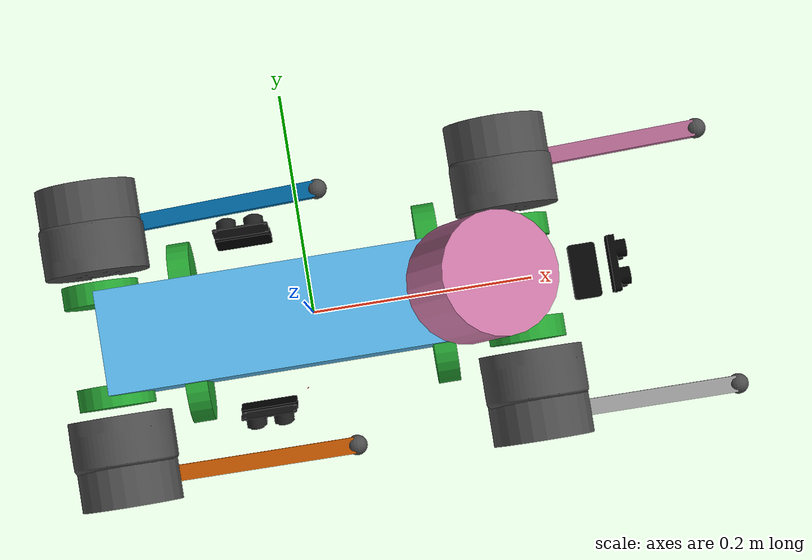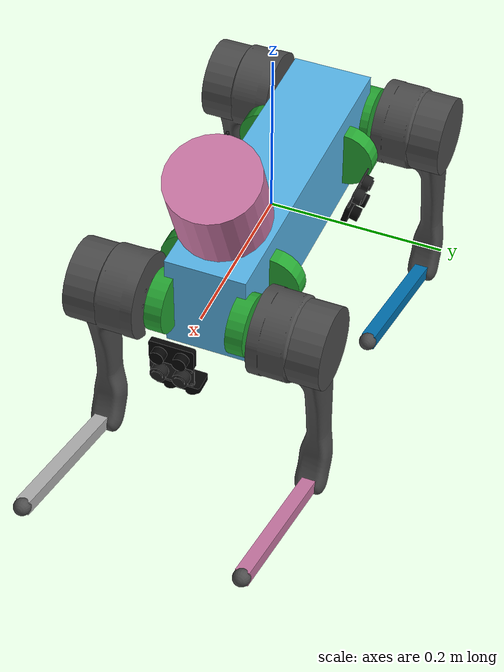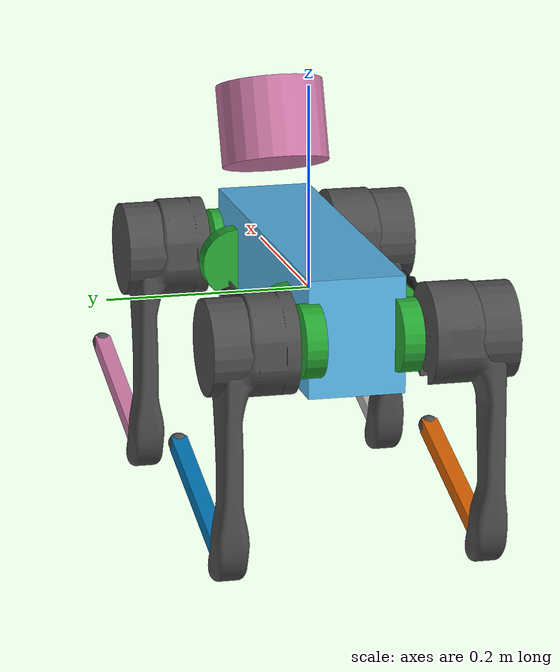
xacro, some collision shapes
<?xml version="1.0"?>

<robot name="go1" xmlns:xacro="http://www.ros.org/wiki/xacro">

    <xacro:arg name="DEBUG" default="false"/>

    <xacro:include filename="$(find go1_description)/xacro/const.xacro"/>
    <xacro:include filename="$(find go1_description)/xacro/materials.xacro"/>
    <xacro:include filename="$(find go1_description)/xacro/leg.xacro"/>
    <xacro:include filename="$(find go1_description)/xacro/gazebo.xacro"/>
    <xacro:include filename="$(find go1_description)/xacro/depthCamera.xacro"/>
    <xacro:include filename="$(find go1_description)/xacro/ultraSound.xacro"/>
    <xacro:include filename="$(find go1_description)/xacro/lidar.xacro"/>

    <xacro:arg name="gpu" default="true"/>
    <xacro:property name="gpu" value="$(arg gpu)" />

    <!-- Rotor related joint and link is only for demonstrate location. -->
    <!-- Actually, the rotor will rotate and the joint is not fixed. Reduction ratio should be considered. -->

    <!-- Debug mode will hung up the robot, use "true" or "false" to switch it. -->
    <xacro:if value="$(arg DEBUG)">
        <link name="world"/>
        <joint name="base_static_joint" type="fixed">
            <origin rpy="0 0 0" xyz="0 0 0"/>
            <parent link="world"/>
            <child link="base"/>
        </joint>
    </xacro:if>

    <link name="base">
        <visual>
            <origin rpy="0 0 0" xyz="0 0 0"/>
            <geometry>
                <box size="0.001 0.001 0.001"/>
            </geometry>
        </visual>
    </link>

    <joint name="floating_base" type="fixed">
        <origin rpy="0 0 0" xyz="0 0 0"/>
        <parent link="base"/>
        <child link="trunk"/>
    </joint>

    <link name="trunk">
        <visual>
            <origin rpy="0 0 0" xyz="0 0 0"/>
            <geometry>
                <mesh filename="package://go1_description/meshes/trunk.dae" scale="1 1 1"/>
            </geometry>
        </visual>
        <collision>
            <origin rpy="0 0 0" xyz="0 0 0"/>
            <geometry>
                <box size="${trunk_length} ${trunk_width} ${trunk_height}"/>
            </geometry>
        </collision>
        <inertial>
            <origin rpy="0 0 0" xyz="${trunk_com_x} ${trunk_com_y} ${trunk_com_z}"/>
            <mass value="${trunk_mass}"/>
            <inertia
                ixx="${trunk_ixx}" ixy="${trunk_ixy}" ixz="${trunk_ixz}"
                iyy="${trunk_iyy}" iyz="${trunk_iyz}"
                izz="${trunk_izz}"/>
        </inertial>
    </link>

    <joint name="imu_joint" type="fixed">
        <parent link="trunk"/>
        <child link="imu_link"/>
        <origin rpy="0 0 0" xyz="-0.01592 -0.06659 -0.00617"/>
    </joint>

    <link name="imu_link">
        <inertial>
            <mass value="0.001"/>
            <origin rpy="0 0 0" xyz="0 0 0"/>
            <inertia ixx="0.0001" ixy="0" ixz="0" iyy="0.0001" iyz="0" izz="0.0001"/>
        </inertial>
        <visual>
            <origin rpy="0 0 0" xyz="0 0 0"/>
            <geometry>
                <box size="0.001 0.001 0.001"/>
            </geometry>
        </visual>
        <collision>
            <origin rpy="0 0 0" xyz="0 0 0"/>
            <geometry>
                <box size=".001 .001 .001"/>
            </geometry>
        </collision>
    </link>

    <xacro:leg name="FR" mirror="-1" mirror_dae= "False" front_hind="1"  front_hind_dae="True"  />
    <xacro:leg name="FL" mirror="1"  mirror_dae="True"   front_hind="1"  front_hind_dae="True"  />
    <xacro:leg name="RR" mirror="-1" mirror_dae="False"  front_hind="-1" front_hind_dae="False" />
    <xacro:leg name="RL" mirror="1"  mirror_dae="True"   front_hind="-1" front_hind_dae="False" />

    <xacro:depthCamera camID="1" name="face">
        <origin rpy="0 0 0" xyz="0.2785 -0.0125 0.0167"/>
    </xacro:depthCamera>

    <xacro:depthCamera camID="2" name="chin">
        <origin rpy="0 ${PI/2} 0" xyz="0.2522 -0.0125 -0.0436"/>
    </xacro:depthCamera>

    <xacro:depthCamera camID="3" name="left">
        <origin rpy="0 0.2618 ${PI/2}" xyz="-0.041 0.082 -0.0176"/>
    </xacro:depthCamera>

    <xacro:depthCamera camID="4" name="right">
        <origin rpy="0 0.2618 ${-PI/2}" xyz="-0.066 -0.082 -0.0176"/>
    </xacro:depthCamera>

    <xacro:depthCamera camID="5" name="rearDown">
        <origin rpy="0 ${PI/2} 0" xyz="-0.0825 -0.0125 -0.04365"/>
    </xacro:depthCamera>

    <joint name="camera_laserscan_joint_left" type="fixed">
        <origin rpy="0 0.2618 0" xyz="0 0 0"/>
        <parent link="camera_left"/>
        <child link="camera_laserscan_link_left"/>
    </joint>

    <link name="camera_laserscan_link_left">
    </link>

    <joint name="camera_laserscan_joint_right" type="fixed">
        <origin rpy="0 0.2618 0" xyz="0 0 0"/>
        <parent link="camera_right"/>
        <child link="camera_laserscan_link_right"/>
    </joint>

    <link name="camera_laserscan_link_right">
    </link>

    <xacro:ultraSound name="left">
        <origin rpy="0 0.2618 ${PI/2}" xyz="-0.0535  0.0826 0.00868"/>
    </xacro:ultraSound>

    <xacro:ultraSound name="right">
        <origin rpy="0 0.2618 ${-PI/2}" xyz="-0.0535 -0.0826 0.00868"/>
    </xacro:ultraSound>

    <xacro:ultraSound name="face">
        <origin rpy="0 0 0" xyz="0.2747 0.0 -0.0088"/>
    </xacro:ultraSound>

    <xacro:include filename="$(find go1_description)/xacro/RS-32.urdf.xacro"/>
    <xacro:RS-32 parent="trunk" name="robosense" hz="20" lasers="32" samples="900" gpu="${gpu}" topic="/rslidar_points" collision_range="0.1" min_range="0.1" max_range="30.0" min_angle="-${M_PI}" max_angle="${M_PI}">
        <origin xyz="0.15 0 0.13" rpy="0 0.37 0" />
    </xacro:RS-32>

</robot>

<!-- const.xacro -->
<robot xmlns:xacro="http://www.ros.org/wiki/xacro">

    <!-- Constants for robot dimensions -->
    <xacro:property name="PI" value="3.1415926535897931"/>
    <xacro:property name="stick_mass" value="0.00001"/>

    <!-- simplified collision value -->
    <xacro:property name="trunk_width" value="0.0935"/>
    <xacro:property name="trunk_length" value="0.3762"/>
    <xacro:property name="trunk_height" value="0.114"/>
    <xacro:property name="hip_radius" value="0.046"/>
    <xacro:property name="hip_length" value="0.04"/>
    <xacro:property name="thigh_shoulder_radius" value="0.041"/>
    <xacro:property name="thigh_shoulder_length" value="0.032"/>
    <xacro:property name="thigh_width" value="0.0245"/>
    <xacro:property name="thigh_height" value="0.034"/>
    <xacro:property name="calf_width" value="0.016"/>
    <xacro:property name="calf_height" value="0.016"/>
    <xacro:property name="foot_radius" value="0.02"/>
    <xacro:property name="stick_radius" value="0.01"/>
    <xacro:property name="stick_length" value="0.2"/>

    <!-- kinematic value -->
    <xacro:property name="thigh_offset" value="0.08"/>
    <xacro:property name="thigh_length" value="0.213"/>
    <xacro:property name="calf_length" value="0.213"/>

    <!-- leg offset from trunk center value -->
    <xacro:property name="leg_offset_x" value="0.1881"/>
    <xacro:property name="leg_offset_y" value="0.04675"/>
    <xacro:property name="hip_offset" value="0.08"/>

    <!-- offset of link and rotor locations (left front) -->
    <xacro:property name="hip_offset_x" value="0.1881"/>
    <xacro:property name="hip_offset_y" value="0.04675"/>
    <xacro:property name="hip_offset_z" value="0.0"/>
    <xacro:property name="hip_rotor_offset_x" value="0.11215"/>
    <xacro:property name="hip_rotor_offset_y" value="0.04675"/>
    <xacro:property name="hip_rotor_offset_z" value="0.0"/>

    <xacro:property name="thigh_offset_x" value="0"/>
    <xacro:property name="thigh_offset_y" value="0.08"/>
    <xacro:property name="thigh_offset_z" value="0.0"/>
    <xacro:property name="thigh_rotor_offset_x" value="0.0"/>
    <xacro:property name="thigh_rotor_offset_y" value="-0.00015"/>
    <xacro:property name="thigh_rotor_offset_z" value="0.0"/>

    <xacro:property name="calf_offset_x" value="0.0"/>
    <xacro:property name="calf_offset_y" value="0.0"/>
    <xacro:property name="calf_offset_z" value="-0.213"/>
    <xacro:property name="calf_rotor_offset_x" value="0.0"/>
    <xacro:property name="calf_rotor_offset_y" value="-0.03235"/>
    <xacro:property name="calf_rotor_offset_z" value="0.0"/>

    <!-- joint limits -->
    <xacro:property name="damping" value="0.01"/>
    <xacro:property name="friction" value="0.2"/>
    <xacro:property name="hip_position_max" value="0.863"/>
    <xacro:property name="hip_position_min" value="-0.863"/>
    <xacro:property name="hip_velocity_max" value="30.1"/>
    <xacro:property name="hip_torque_max" value="23.7"/>
    <xacro:property name="thigh_position_max" value="4.501"/>
    <xacro:property name="thigh_position_min" value="-0.686"/>
    <xacro:property name="thigh_velocity_max" value="30.1"/>
    <xacro:property name="thigh_torque_max" value="23.7"/>
    <xacro:property name="calf_position_max" value="-0.888"/>
    <xacro:property name="calf_position_min" value="-2.818"/>
    <xacro:property name="calf_velocity_max" value="20.06"/>
    <xacro:property name="calf_torque_max" value="35.55"/>

    <!-- dynamics inertial value        total 12.84kg -->
    <!-- trunk -->
    <xacro:property name="trunk_mass" value="5.204"/>
    <xacro:property name="trunk_com_x" value="0.0223"/>
    <xacro:property name="trunk_com_y" value="0.002"/>
    <xacro:property name="trunk_com_z" value="-0.0005"/>
    <xacro:property name="trunk_ixx" value="0.0168128557"/>
    <xacro:property name="trunk_ixy" value="-0.0002296769"/>
    <xacro:property name="trunk_ixz" value="-0.0002945293"/>
    <xacro:property name="trunk_iyy" value="0.063009565"/>
    <xacro:property name="trunk_iyz" value="-0.0000418731"/>
    <xacro:property name="trunk_izz" value="0.0716547275"/>

    <!-- hip (left front) -->
    <xacro:property name="hip_mass" value="0.591"/>
    <xacro:property name="hip_com_x" value="-0.005657"/>
    <xacro:property name="hip_com_y" value="-0.008752"/>
    <xacro:property name="hip_com_z" value="-0.000102"/>
    <xacro:property name="hip_ixx" value="0.000334008405"/>
    <xacro:property name="hip_ixy" value="-0.000010826066"/>
    <xacro:property name="hip_ixz" value="0.000001290732"/>
    <xacro:property name="hip_iyy" value="0.000619101213"/>
    <xacro:property name="hip_iyz" value="0.000001643194"/>
    <xacro:property name="hip_izz" value="0.00040057614"/>

    <xacro:property name="hip_rotor_mass" value="0.089"/>
    <xacro:property name="hip_rotor_com_x" value="0.0"/>
    <xacro:property name="hip_rotor_com_y" value="0.0"/>
    <xacro:property name="hip_rotor_com_z" value="0.0"/>
    <xacro:property name="hip_rotor_ixx" value="0.000111842"/>
    <xacro:property name="hip_rotor_ixy" value="0.0"/>
    <xacro:property name="hip_rotor_ixz" value="0.0"/>
    <xacro:property name="hip_rotor_iyy" value="0.000059647"/>
    <xacro:property name="hip_rotor_iyz" value="0.0"/>
    <xacro:property name="hip_rotor_izz" value="0.000059647"/>

    <!-- thigh -->
    <xacro:property name="thigh_mass" value="0.92"/>
    <xacro:property name="thigh_com_x" value="-0.003342"/>
    <xacro:property name="thigh_com_y" value="-0.018054"/>
    <xacro:property name="thigh_com_z" value="-0.033451"/>
    <xacro:property name="thigh_ixx" value="0.004431760472"/>
    <xacro:property name="thigh_ixy" value="0.000057496807"/>
    <xacro:property name="thigh_ixz" value="-0.000218457134"/>
    <xacro:property name="thigh_iyy" value="0.004485671726"/>
    <xacro:property name="thigh_iyz" value="0.000572001265"/>
    <xacro:property name="thigh_izz" value="0.000740309489"/>

    <xacro:property name="thigh_rotor_mass" value="0.089"/>
    <xacro:property name="thigh_rotor_com_x" value="0.0"/>
    <xacro:property name="thigh_rotor_com_y" value="0.0"/>
    <xacro:property name="thigh_rotor_com_z" value="0.0"/>
    <xacro:property name="thigh_rotor_ixx" value="0.000059647"/>
    <xacro:property name="thigh_rotor_ixy" value="0.0"/>
    <xacro:property name="thigh_rotor_ixz" value="0.0"/>
    <xacro:property name="thigh_rotor_iyy" value="0.000111842"/>
    <xacro:property name="thigh_rotor_iyz" value="0.0"/>
    <xacro:property name="thigh_rotor_izz" value="0.000059647"/>

    <!-- calf -->
    <xacro:property name="calf_mass" value="0.135862"/>
    <xacro:property name="calf_com_x" value="0.006197"/>
    <xacro:property name="calf_com_y" value="0.001408"/>
    <xacro:property name="calf_com_z" value="-0.116695"/>
    <xacro:property name="calf_ixx" value="0.001088793059"/>
    <xacro:property name="calf_ixy" value="-0.000000255679"/>
    <xacro:property name="calf_ixz" value="0.000007117814"/>
    <xacro:property name="calf_iyy" value="0.001100428748"/>
    <xacro:property name="calf_iyz" value="0.000002077264"/>
    <xacro:property name="calf_izz" value="0.000024787446"/>

    <xacro:property name="calf_rotor_mass" value="0.089"/>
    <xacro:property name="calf_rotor_com_x" value="0.0"/>
    <xacro:property name="calf_rotor_com_y" value="0.0"/>
    <xacro:property name="calf_rotor_com_z" value="0.0"/>
    <xacro:property name="calf_rotor_ixx" value="0.000059647"/>
    <xacro:property name="calf_rotor_ixy" value="0.0"/>
    <xacro:property name="calf_rotor_ixz" value="0.0"/>
    <xacro:property name="calf_rotor_iyy" value="0.000111842"/>
    <xacro:property name="calf_rotor_iyz" value="0.0"/>
    <xacro:property name="calf_rotor_izz" value="0.000059647"/>

    <!-- foot -->
    <xacro:property name="foot_mass" value="0.06"/>

</robot>

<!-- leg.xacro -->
<robot xmlns:xacro="http://www.ros.org/wiki/xacro">

    <xacro:include filename="$(find go1_description)/xacro/transmission.xacro"/>

    <xacro:macro name="leg" params="name mirror mirror_dae front_hind front_hind_dae">

        <joint name="${name}_hip_joint" type="revolute">
            <xacro:if value="${(mirror_dae == False) and (front_hind_dae == True)}">
                <origin rpy="0 0 0" xyz="${leg_offset_x} ${-leg_offset_y} 0"/>
            </xacro:if>
            <xacro:if value="${(mirror_dae == True) and (front_hind_dae == True)}">
                <origin rpy="0 0 0" xyz="${leg_offset_x} ${leg_offset_y} 0"/>
            </xacro:if>
            <xacro:if value="${(mirror_dae == False) and (front_hind_dae == False)}">
                <origin rpy="0 0 0" xyz="${-leg_offset_x} ${-leg_offset_y} 0"/>
            </xacro:if>
            <xacro:if value="${(mirror_dae == True) and (front_hind_dae == False)}">
                <origin rpy="0 0 0" xyz="${-leg_offset_x} ${leg_offset_y} 0"/>
            </xacro:if>
            <parent link="trunk"/>
            <child link="${name}_hip"/>
            <axis xyz="1 0 0"/>
            <dynamics damping="${damping}" friction="${friction}"/>
            <xacro:if value="${(mirror_dae == True)}">
                <limit effort="${hip_torque_max}" velocity="${hip_velocity_max}" lower="${hip_position_min}" upper="${hip_position_max}"/>
            </xacro:if>
            <xacro:if value="${(mirror_dae == False)}">
                <limit effort="${hip_torque_max}" velocity="${hip_velocity_max}" lower="${-hip_position_max}" upper="${-hip_position_min}"/>
            </xacro:if>
        </joint>

        <joint name="${name}_hip_rotor_joint" type="fixed">
            <xacro:if value="${(mirror_dae == False) and (front_hind_dae == True)}">
                <origin rpy="0 0 0" xyz="${hip_rotor_offset_x} ${-hip_rotor_offset_y} 0"/>
            </xacro:if>
            <xacro:if value="${(mirror_dae == True) and (front_hind_dae == True)}">
                <origin rpy="0 0 0" xyz="${hip_rotor_offset_x} ${hip_rotor_offset_y} 0"/>
            </xacro:if>
            <xacro:if value="${(mirror_dae == False) and (front_hind_dae == False)}">
                <origin rpy="0 0 0" xyz="${-hip_rotor_offset_x} ${-hip_rotor_offset_y} 0"/>
            </xacro:if>
            <xacro:if value="${(mirror_dae == True) and (front_hind_dae == False)}">
                <origin rpy="0 0 0" xyz="${-hip_rotor_offset_x} ${hip_rotor_offset_y} 0"/>
            </xacro:if>
            <parent link="trunk"/>
            <child link="${name}_hip_rotor"/>
        </joint>

        <link name="${name}_hip">
            <visual>
                <xacro:if value="${(mirror_dae == True) and (front_hind_dae == True)}">
                    <origin rpy="0 0 0" xyz="0 0 0"/>
                </xacro:if>
                <xacro:if value="${(mirror_dae == False) and (front_hind_dae == True)}">
                    <origin rpy="${PI} 0 0" xyz="0 0 0"/>
                </xacro:if>
                <xacro:if value="${(mirror_dae == True) and (front_hind_dae == False)}">
                    <origin rpy="0 ${PI} 0" xyz="0 0 0"/>
                </xacro:if>
                <xacro:if value="${(mirror_dae == False) and (front_hind_dae == False)}">
                    <origin rpy="${PI} ${PI} 0" xyz="0 0 0"/>
                </xacro:if>
                <geometry>
                    <mesh filename="file://$(find go1_description)/meshes/hip.dae" scale="1 1 1"/>
                </geometry>
            </visual>
            <collision>
                <origin rpy="${PI/2.0} 0 0" xyz="0 ${hip_offset*mirror} 0"/>
                <geometry>
                    <cylinder length="${hip_length}" radius="${hip_radius}"/>
                </geometry>
            </collision>
            <inertial>
                <origin rpy="0 0 0" xyz="${hip_com_x*front_hind} ${hip_com_y*mirror} ${hip_com_z}"/>
                <mass value="${hip_mass}"/>
                <inertia
                    ixx="${hip_ixx}" ixy="${hip_ixy*mirror*front_hind}" ixz="${hip_ixz*front_hind}"
                    iyy="${hip_iyy}" iyz="${hip_iyz*mirror}"
                    izz="${hip_izz}"/>
            </inertial>
        </link>

        <link name="${name}_hip_rotor">
            <visual>
                <origin rpy="0 ${PI/2.0} 0" xyz="0 0 0"/>
                <geometry>
                    <cylinder length="0.02" radius="0.035"/>
                </geometry>
                <material name="green"/>
            </visual>
            <collision>
                <origin rpy="0 ${PI/2.0} 0" xyz="0 0 0"/>
                <geometry>
                    <cylinder length="0.02" radius="0.035"/>
                </geometry>
            </collision>
            <inertial>
                <origin rpy="0 0 0" xyz="${hip_rotor_com_x} ${hip_rotor_com_y} ${hip_rotor_com_z}"/>
                <mass value="${hip_rotor_mass}"/>
                <inertia
                    ixx="${hip_rotor_ixx}" ixy="${hip_rotor_ixy}" ixz="${hip_rotor_ixz}"
                    iyy="${hip_rotor_iyy}" iyz="${hip_rotor_iyz}"
                    izz="${hip_rotor_izz}"/>
            </inertial>
        </link>

        <joint name="${name}_thigh_joint" type="revolute">
            <origin rpy="0 0 0" xyz="0 ${thigh_offset*mirror} 0"/>
            <parent link="${name}_hip"/>
            <child link="${name}_thigh"/>
            <axis xyz="0 1 0"/>
            <dynamics damping="${damping}" friction="${friction}"/>
            <limit effort="${thigh_torque_max}" velocity="${thigh_velocity_max}" lower="${thigh_position_min}" upper="${thigh_position_max}"/>
        </joint>

        <joint name="${name}_thigh_rotor_joint" type="fixed">
            <origin rpy="0 0 0" xyz="${thigh_rotor_offset_x} ${thigh_rotor_offset_y*mirror} 0"/>
            <parent link="${name}_hip"/>
            <child link="${name}_thigh_rotor"/>
        </joint>

        <link name="${name}_thigh">
            <visual>
                <origin rpy="0 0 0" xyz="0 0 0"/>
                <geometry>
                    <xacro:if value="${mirror_dae == True}">
                        <mesh filename="file://$(find go1_description)/meshes/thigh.dae" scale="1 1 1"/>
                    </xacro:if>
                    <xacro:if value="${mirror_dae == False}">
                        <mesh filename="file://$(find go1_description)/meshes/thigh_mirror.dae" scale="1 1 1"/>
                    </xacro:if>
                </geometry>
            </visual>
            <collision>
                <origin rpy="0 ${PI/2.0} 0" xyz="0 0 ${-thigh_length/2.0}"/>
                <geometry>
                    <box size="${thigh_length} ${thigh_width} ${thigh_height}"/>
                </geometry>
            </collision>
            <inertial>
                <origin rpy="0 0 0" xyz="${thigh_com_x} ${thigh_com_y*mirror} ${thigh_com_z}"/>
                <mass value="${thigh_mass}"/>
                <inertia
                    ixx="${thigh_ixx}" ixy="${thigh_ixy*mirror}" ixz="${thigh_ixz}"
                    iyy="${thigh_iyy}" iyz="${thigh_iyz*mirror}"
                    izz="${thigh_izz}"/>
            </inertial>
        </link>

        <link name="${name}_thigh_rotor">
            <visual>
                <origin rpy="${PI/2.0} 0 0" xyz="0 0 0"/>
                <geometry>
                    <cylinder length="0.02" radius="0.035"/>
                </geometry>
                <material name="green"/>
            </visual>
            <collision>
                <origin rpy="${PI/2.0} 0 0" xyz="0 0 0"/>
                <geometry>
                    <cylinder length="0.02" radius="0.035"/>
                </geometry>
            </collision>
            <inertial>
                <origin rpy="0 0 0" xyz="${thigh_rotor_com_x} ${thigh_rotor_com_y} ${thigh_rotor_com_z}"/>
                <mass value="${thigh_rotor_mass}"/>
                <inertia
                    ixx="${thigh_rotor_ixx}" ixy="${thigh_rotor_ixy}" ixz="${thigh_rotor_ixz}"
                    iyy="${thigh_rotor_iyy}" iyz="${thigh_rotor_iyz}"
                    izz="${thigh_rotor_izz}"/>
            </inertial>
        </link>

        <joint name="${name}_calf_joint" type="revolute">
            <origin rpy="0 0 0" xyz="0 0 ${-thigh_length}"/>
            <parent link="${name}_thigh"/>
            <child link="${name}_calf"/>
            <axis xyz="0 1 0"/>
            <dynamics damping="${damping}" friction="${friction}"/>
            <limit effort="${calf_torque_max}" velocity="${calf_velocity_max}" lower="${calf_position_min}" upper="${calf_position_max}"/>
        </joint>

        <joint name="${name}_calf_rotor_joint" type="fixed">
            <origin rpy="0 0 0" xyz="${calf_rotor_offset_x} ${calf_rotor_offset_y*mirror} 0"/>
            <parent link="${name}_thigh"/>
            <child link="${name}_calf_rotor"/>
        </joint>

        <link name="${name}_calf">
            <visual>
                <origin rpy="0 0 0" xyz="0 0 0"/>
                <geometry>
                    <mesh filename="file://$(find go1_description)/meshes/calf.dae" scale="1 1 1"/>
                </geometry>
            </visual>
            <collision>
                <origin rpy="0 ${PI/2.0} 0" xyz="0 0 ${-calf_length/2.0}"/>
                <geometry>
                    <box size="${calf_length} ${calf_width} ${calf_height}"/>
                </geometry>
            </collision>
            <inertial>
                <origin rpy="0 0 0" xyz="${calf_com_x} ${calf_com_y} ${calf_com_z}"/>
                <mass value="${calf_mass}"/>
                <inertia
                    ixx="${calf_ixx}" ixy="${calf_ixy}" ixz="${calf_ixz}"
                    iyy="${calf_iyy}" iyz="${calf_iyz}"
                    izz="${calf_izz}"/>
            </inertial>
        </link>

        <link name="${name}_calf_rotor">
            <visual>
                <origin rpy="${PI/2.0} 0 0" xyz="0 0 0"/>
                <geometry>
                    <cylinder length="0.02" radius="0.035"/>
                </geometry>
                <material name="green"/>
            </visual>
            <collision>
                <origin rpy="${PI/2.0} 0 0" xyz="0 0 0"/>
                <geometry>
                    <cylinder length="0.02" radius="0.035"/>
                </geometry>
            </collision>
            <inertial>
                <origin rpy="0 0 0" xyz="${calf_rotor_com_x} ${calf_rotor_com_y} ${calf_rotor_com_z}"/>
                <mass value="${calf_rotor_mass}"/>
                <inertia
                    ixx="${calf_rotor_ixx}" ixy="${calf_rotor_ixy}" ixz="${calf_rotor_ixz}"
                    iyy="${calf_rotor_iyy}" iyz="${calf_rotor_iyz}"
                    izz="${calf_rotor_izz}"/>
            </inertial>
        </link>

        <joint name="${name}_foot_fixed" type="fixed">
            <origin rpy="0 0 0" xyz="0 0 ${-(calf_length)}"/>
            <parent link="${name}_calf"/>
            <child link="${name}_foot"/>
        </joint>

        <link name="${name}_foot">
            <visual>
                <origin rpy="0 0 0" xyz="0 0 0"/>
                <geometry>
                    <sphere radius="${foot_radius-0.01}"/>
                </geometry>
            </visual>
            <collision>
                <origin rpy="0 0 0" xyz="0 0 0"/>
                <geometry>
                    <sphere radius="${foot_radius}"/>
                </geometry>
            </collision>
            <inertial>
                <mass value="${foot_mass}"/>
                <inertia
                    ixx="${(2*foot_mass)/5.0*(foot_radius*foot_radius)}" ixy="0.0" ixz="0.0"
                    iyy="${(2*foot_mass)/5.0*(foot_radius*foot_radius)}" iyz="0.0"
                    izz="${(2*foot_mass)/5.0*(foot_radius*foot_radius)}"/>
            </inertial>
        </link>

        <xacro:leg_transmission name="${name}"/>
    </xacro:macro>
</robot>

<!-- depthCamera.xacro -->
<robot xmlns:xacro="http://www.ros.org/wiki/xacro">
    <xacro:macro name="depthCamera" params="camID name *origin">
        <joint name="camera_joint_${name}" type="fixed">
            <xacro:insert_block name="origin"/>
            <parent link="trunk"/>
            <child link="camera_${name}"/>
        </joint>

        <link name="camera_${name}">
            <collision>
            <origin xyz="0 0 0" rpy="0 0 0"/>
            <geometry>
                <box size=".001 .001 .001"/>
            </geometry>
            </collision>

            <visual>
            <origin xyz="0 0 0" rpy="0 0 0"/>
            <geometry>
                <mesh filename="file://$(find go1_description)/meshes/depthCamera.dae" scale="1 1 1"/>
            </geometry>
            </visual>

            <inertial>
            <mass value="1e-5" />
            <origin xyz="0 0 0" rpy="0 0 0"/>
            <inertia ixx="1e-6" ixy="0" ixz="0" iyy="1e-6" iyz="0" izz="1e-6" />
            </inertial>
        </link>

        <joint name="camera_optical_joint_${name}" type="fixed">
            <origin xyz="0 0 0" rpy="${-pi/2} 0 ${-pi/2}"/>
            <parent link="camera_${name}"/>
            <child link="camera_optical_${name}"/>
        </joint>

        <link name="camera_optical_${name}">
        </link>

    </xacro:macro>
</robot>

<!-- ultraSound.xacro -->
<robot xmlns:xacro="http://www.ros.org/wiki/xacro">
    <xacro:macro name="ultraSound" params="name *origin">
        <joint name="ultraSound_joint_${name}" type="fixed">
            <xacro:insert_block name="origin" />
            <parent link="trunk" />
            <child link="ultraSound_${name}" />
        </joint>
        <link name="ultraSound_${name}">
            <collision>
                <origin xyz="0 0 0" rpy="0 0 0" />
                <geometry>
                    <box size=".001 .001 .001" />
                </geometry>
            </collision>

            <visual>
                <origin xyz="0 0 0" rpy="0 0 0" />
                <geometry>
                    <mesh filename="package://go1_description/meshes/ultraSound.dae" scale="1 1 1" />
                </geometry>
                <material name="black" />
            </visual>

            <inertial>
                <mass value="1e-5" />
                <origin xyz="0 0 0" rpy="0 0 0" />
                <inertia ixx="1e-6" ixy="0" ixz="0" iyy="1e-6" iyz="0" izz="1e-6" />
            </inertial>
        </link>
    </xacro:macro>
</robot>

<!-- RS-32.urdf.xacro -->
<robot xmlns:xacro="http://www.ros.org/wiki/xacro" name="RS-32">
  <xacro:property name="M_PI" value="3.1415926535897931" />
  <xacro:macro name="RS-32" params="*origin parent:=base_link name:=robosense topic:=/robosense_points hz:=20 lasers:=16 samples:=900 collision_range:=0.4 min_range:=0.4 max_range:=150.0 noise:=0.008 min_angle:=-${M_PI} max_angle:=${M_PI} gpu:=true">

    <joint name="${name}_base_mount_joint" type="fixed">
      <xacro:insert_block name="origin" />
      <parent link="${parent}"/>
      <child link="rslidar"/>
    </joint>

    <link name="rslidar">
      <inertial>
        <mass value="0.87"/>
        <origin xyz="0 0 0"/>
        <inertia ixx="0.001094695" ixy="0" ixz="0"
          iyy="0.001094695" iyz="0"
          izz="0.001245079"/>
      </inertial>
      <visual>
        <origin rpy="-1.5707 0 0" xyz="0 0 0"/>
        <geometry>
          <mesh filename="package://go1_description/meshes/robosense_16.dae" />
        </geometry>
      </visual>
      <collision>
        <origin rpy="0 0 0" xyz="0 0 0"/>
        <geometry>
          <cylinder radius="0.0535" length="0.0817"/>
        </geometry>
      </collision>
    </link>

    <joint name="${name}_base_scan_joint" type="fixed" >
      <origin xyz="0 0 0.039" rpy="0 0 0" />
      <parent link="rslidar" />
      <child link="${name}"/>
    </joint>

    <link name="${name}">
      <inertial>
        <mass value="0.01"/>
        <origin xyz="0 0 0"/>
        <inertia ixx="1e-7" ixy="0" ixz="0" iyy="1e-7" iyz="0" izz="1e-7"/>
      </inertial>
    </link>

    <!-- Gazebo requires the robosense_gazebo_plugins package -->
    <gazebo reference="${name}">
      <xacro:if value="${gpu}">
        <sensor type="gpu_ray" name="${name}-RS16">
          <pose>0 0 0 0 0 0</pose>
          <visualize>false</visualize>
          <update_rate>${hz}</update_rate>
          <ray>
            <scan>
              <horizontal>
                <samples>${samples}</samples>
                <resolution>1</resolution>
                <min_angle>${min_angle}</min_angle>
                <max_angle>${max_angle}</max_angle>
              </horizontal>
              <vertical>
                <samples>${lasers}</samples>
                <resolution>1</resolution>
                <min_angle>-${10.0*M_PI/180.0}</min_angle>
                <max_angle>${80.0*M_PI/180.0}</max_angle>
              </vertical>
            </scan>
            <range>
              <min>${collision_range}</min>
              <max>${max_range}</max>
              <resolution>0.001</resolution>
            </range>
            <noise>
              <type>gaussian</type>
              <mean>0.0</mean>
              <stddev>0.0</stddev>
            </noise>
          </ray>
          <plugin name="gazebo_ros_laser_controller" filename="libgazebo_ros_robosense_gpu_laser.so">
            <topicName>${topic}</topicName>
            <frameName>${name}</frameName>
            <min_range>${min_range}</min_range>
            <max_range>${max_range}</max_range>
            <gaussianNoise>${noise}</gaussianNoise>
          </plugin>
        </sensor>
      </xacro:if>
      <xacro:unless value="${gpu}">
        <sensor type="ray" name="${name}-RS16">
          <pose>0 0 0 0 0 0</pose>
          <visualize>false</visualize>
          <update_rate>${hz}</update_rate>
          <ray>
            <scan>
              <horizontal>
                <samples>${samples}</samples>
                <resolution>1</resolution>
                <min_angle>${min_angle}</min_angle>
                <max_angle>${max_angle}</max_angle>
              </horizontal>
              <vertical>
                <samples>${lasers}</samples>
                <resolution>1</resolution>
                <min_angle>-${10.0*M_PI/180.0}</min_angle>
                <max_angle> ${80.0*M_PI/180.0}</max_angle>
              </vertical>
            </scan>
            <range>
              <min>${collision_range}</min>
              <max>${max_range+1}</max>
              <resolution>0.001</resolution>
            </range>
            <noise>
              <type>gaussian</type>
              <mean>0.0</mean>
              <stddev>0.0</stddev>
            </noise>
          </ray>
          <plugin name="gazebo_ros_laser_controller" filename="libgazebo_ros_robosense_laser.so">
            <topicName>${topic}</topicName>
            <frameName>rslidar</frameName>
            <min_range>${min_range}</min_range>
            <max_range>${max_range}</max_range>
            <gaussianNoise>${noise}</gaussianNoise>
          </plugin>
        </sensor>
      </xacro:unless>
    </gazebo>

  </xacro:macro>
</robot>
